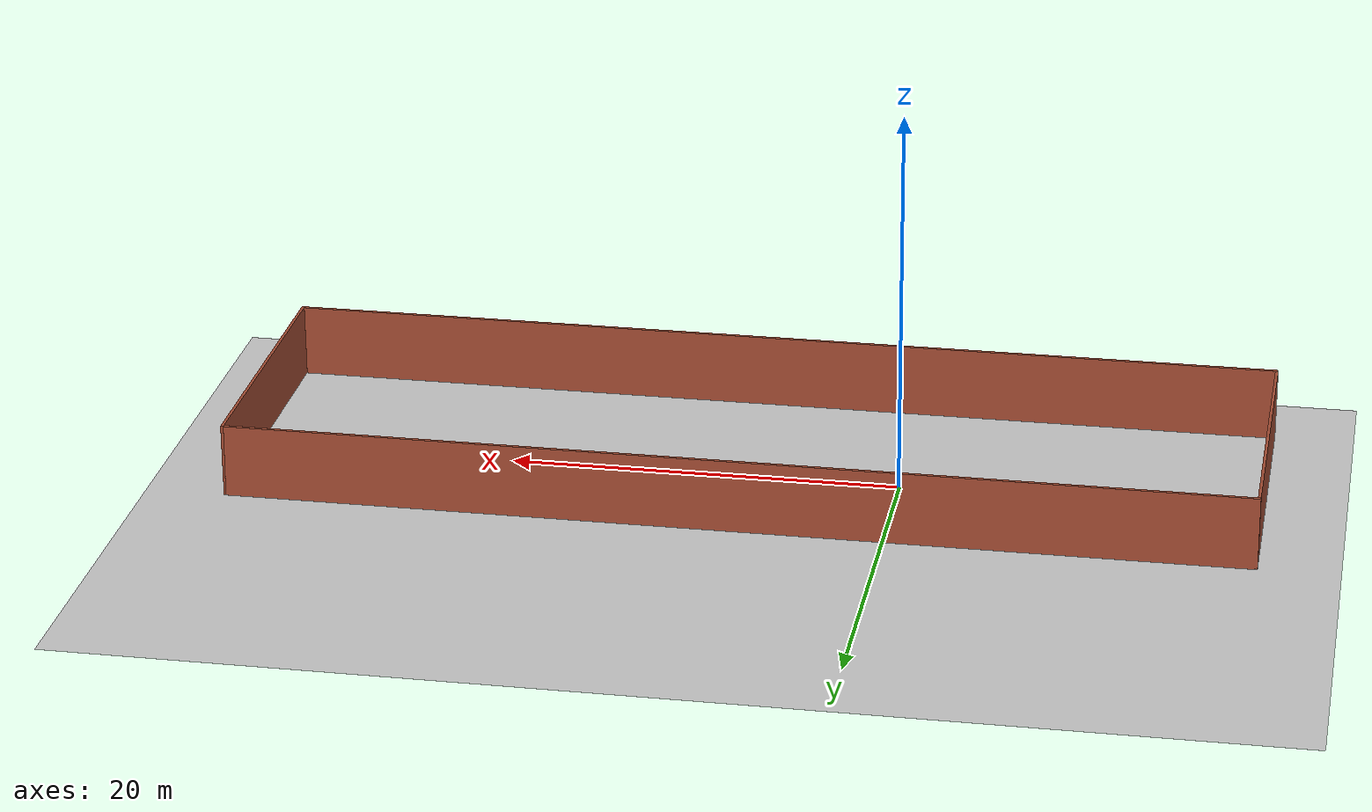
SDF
<sdf version="1.6">
 <world name="default">
  <light name="sun" type="directional">
   <pose>0 0 10 0 -0 0</pose>
   <diffuse>0.8 0.8 0.8 1</diffuse>
   <specular>0.1 0.1 0.1 1</specular>
   <attenuation>
    <range>1000</range>
    <constant>0.9</constant>
    <linear>0.01</linear>
    <quadratic>0.001</quadratic>
   </attenuation>
   <direction>-0.5 0.5 -1</direction>
  </light>
  <model name="ground_plane">
   <static>1</static>
   <link name="link">
    <collision name="collision">
     <geometry><plane><normal>0 0 1</normal><size>100 100</size></plane></geometry>
     <surface><friction><ode><mu>100</mu><mu2>50</mu2></ode></friction></surface>
    </collision>
    <visual name="visual">
     <cast_shadows>0</cast_shadows>
     <geometry><plane><normal>0 0 1</normal><size>100 100</size></plane></geometry>
     <material>
      <script><uri>file://media/materials/scripts/gazebo.material</uri><name>Gazebo/Grey</name></script>
     </material>
    </visual>
   </link>
  </model>
  <gravity>0 0 -9.8</gravity>
  <magnetic_field>6e-06 2.3e-05 -4.2e-05</magnetic_field>
  <atmosphere type="adiabatic"/>
  <physics name="default_physics" default="0" type="ode">
   <max_step_size>0.001</max_step_size>
   <real_time_factor>1</real_time_factor>
   <real_time_update_rate>1000</real_time_update_rate>
  </physics>
  <scene><ambient>0.4 0.4 0.4 1</ambient><background>0.7 0.7 0.7 1</background><shadows>1</shadows></scene>
  <spherical_coordinates>
   <surface_model>EARTH_WGS84</surface_model>
   <latitude_deg>0</latitude_deg>
   <longitude_deg>0</longitude_deg>
   <elevation>0</elevation>
   <heading_deg>0</heading_deg>
  </spherical_coordinates>
  <model name="longhall">
   <pose>7.57314 -1.63814 0 0 -0 0</pose>
   <link name="Wall_1">
    <collision name="Wall_1_Collision">
     <geometry><box><size>15.75 0.15 5</size></box></geometry>
     <pose>0 0 1.25 0 -0 0</pose>
    </collision>
    <visual name="Wall_1_Visual">
     <pose>0 0 1.25 0 -0 0</pose>
     <geometry><box><size>15.75 0.15 5</size></box></geometry>
     <material>
      <script><uri>file://media/materials/scripts/gazebo.material</uri><name>Gazebo/Bricks</name></script>
      <ambient>1 1 1 1</ambient>
     </material>
    </visual>
    <pose>-25.925 0 0 0 0 -1.5708</pose>
   </link>
   <link name="Wall_3">
    <collision name="Wall_3_Collision">
     <geometry><box><size>52 0.15 5</size></box></geometry>
     <pose>0 0 1.25 0 -0 0</pose>
    </collision>
    <visual name="Wall_3_Visual">
     <pose>0 0 1.25 0 -0 0</pose>
     <geometry><box><size>52 0.15 5</size></box></geometry>
     <material>
      <script><uri>file://media/materials/scripts/gazebo.material</uri><name>Gazebo/Bricks</name></script>
      <ambient>1 1 1 1</ambient>
     </material>
    </visual>
    <pose>1e-06 7.8 0 0 -0 0</pose>
   </link>
   <link name="Wall_4">
    <collision name="Wall_4_Collision">
     <geometry><box><size>15.75 0.15 5</size></box></geometry>
     <pose>0 0 1.25 0 -0 0</pose>
    </collision>
    <visual name="Wall_4_Visual">
     <pose>0 0 1.25 0 -0 0</pose>
     <geometry><box><size>15.75 0.15 5</size></box></geometry>
     <material>
      <script><uri>file://media/materials/scripts/gazebo.material</uri><name>Gazebo/Bricks</name></script>
      <ambient>1 1 1 1</ambient>
     </material>
    </visual>
    <pose>25.925 0 0 0 0 -1.5708</pose>
   </link>
   <link name="Wall_5">
    <collision name="Wall_5_Collision">
     <geometry><box><size>52 0.15 5</size></box></geometry>
     <pose>0 0 1.25 0 -0 0</pose>
    </collision>
    <visual name="Wall_5_Visual">
     <pose>0 0 1.25 0 -0 0</pose>
     <geometry><box><size>52 0.15 5</size></box></geometry>
     <material>
      <script><uri>file://media/materials/scripts/gazebo.material</uri><name>Gazebo/Bricks</name></script>
      <ambient>1 1 1 1</ambient>
     </material>
    </visual>
    <pose>1e-06 -7.8 0 0 -0 3.14159</pose>
   </link>
   <static>1</static>
  </model>
  <plugin name="ros_interface_plugin" filename="librotors_gazebo_ros_interface_plugin.so"/>
 </world>
</sdf>
